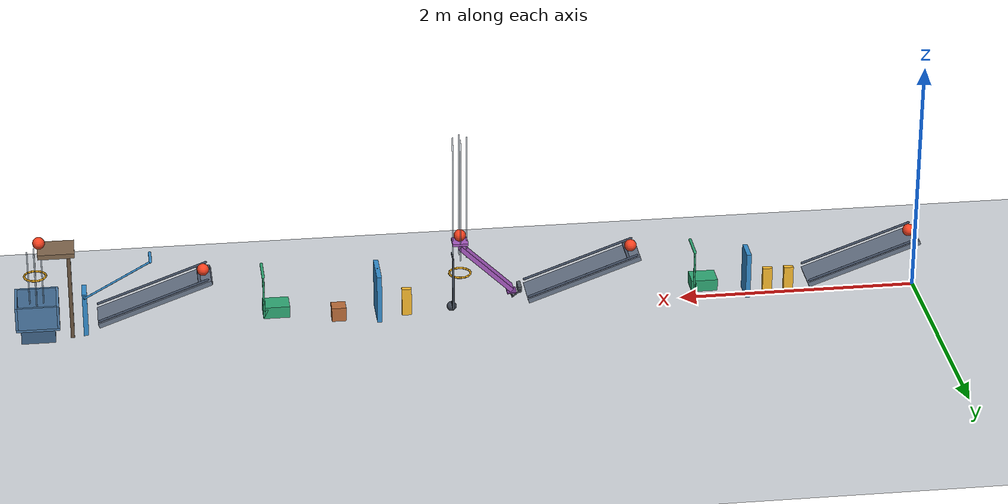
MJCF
<mujoco model="passive_chain_reaction">
  <compiler angle="radian" autolimits="true"/>
  <option timestep="0.002" gravity="0 0 -9.81" integrator="implicitfast" solver="Newton" iterations="100" tolerance="1e-9" cone="elliptic"/>
  <size njmax="3000" nconmax="1000"/>

  <!-- MuJoCo has no direct restitution coefficient. The contact damping ratio below approximates e = 0.05. -->
  <default>
    <geom friction="0.70 0 0" condim="3" solref="0.010 0.690107" solimp="0.95 0.99 0.001 0.5 2"/>
    <joint armature="0" solreflimit="0.006 1" solimplimit="0.99 0.999 0.001 0.5 2"/>
  </default>

  <visual>
    <global azimuth="110" elevation="-20"/>
    <headlight ambient="0.35 0.35 0.35" diffuse="0.65 0.65 0.65" specular="0.15 0.15 0.15"/>
    <rgba haze="0.85 0.90 0.95 1"/>
  </visual>

  <worldbody>
    <light name="main_light" pos="3.5 -3 7" dir="0 0 -1" directional="true"/>
    <camera name="overview" pos="4 -8 5" xyaxes="1 0 0 0 0.447214 0.894427"/>
    <geom name="floor" type="plane" size="12 6 0.1" rgba="0.82 0.84 0.86 1"/>

    <!-- Ramp surfaces are 1.00 m long; their low top edges are at z = 0.15 m. -->
    <body name="ramp1" pos="0.463006 0 0.302216" euler="0 0.3490658504 0">
      <geom name="ramp1_surface" type="box" size="0.50 0.15 0.02" rgba="0.42 0.47 0.55 1"/>
      <geom name="ramp1_left_rail" type="capsule" fromto="-0.48 -0.158 0.045 0.48 -0.158 0.045" size="0.01" rgba="0.25 0.30 0.38 1"/>
      <geom name="ramp1_right_rail" type="capsule" fromto="-0.48 0.158 0.045 0.48 0.158 0.045" size="0.01" rgba="0.25 0.30 0.38 1"/>
    </body>

    <body name="ball1" pos="0.064086 0 0.521904">
      <freejoint name="ball1_free"/>
      <geom name="ball1_sphere" type="sphere" size="0.05" mass="0.20" rgba="0.95 0.25 0.12 1"/>
    </body>

    <body name="domino1" pos="1.0796926 0 0.12">
      <freejoint name="domino1_free"/>
      <geom name="domino1_box" type="box" size="0.04 0.02 0.12" mass="0.25" rgba="0.96 0.72 0.18 1"/>
    </body>

    <body name="domino2" pos="1.2596926 0 0.12">
      <freejoint name="domino2_free"/>
      <geom name="domino2_box" type="box" size="0.04 0.02 0.12" mass="0.25" rgba="0.96 0.72 0.18 1"/>
    </body>

    <body name="flap1" pos="1.4396926 0 0.02">
      <joint name="flap1_hinge" type="hinge" axis="0 1 0" damping="0.04" limited="true" range="0 1.1344640138"/>
      <geom name="flap1_panel" type="box" pos="0 0 0.20" size="0.02 0.10 0.20" mass="0.30" rgba="0.20 0.55 0.80 1"/>
    </body>

    <!-- Cart-mounted pushrods reach the retained balls without changing the cart-box dimensions or total mass. -->
    <body name="cart1" pos="1.81 0 0.15">
      <joint name="cart1_slide" type="slide" axis="1 0 0" damping="0.20" limited="true" range="0 0.45"/>
      <geom name="cart1_box" type="box" size="0.11 0.09 0.05" mass="0.50" rgba="0.18 0.65 0.45 1"/>
      <geom name="cart1_pushrod" type="capsule" fromto="0.11 0.20 0.03 0.11 0.20 0.374245" size="0.008" mass="0" rgba="0.18 0.65 0.45 1"/>
      <geom name="cart1_striker" type="capsule" fromto="0.11 -0.035 0.374245 0.11 0.20 0.374245" size="0.012" mass="0" rgba="0.18 0.65 0.45 1"/>
      <geom name="cart1_pushrod_brace" type="capsule" fromto="0.075 0.075 0.025 0.11 0.20 0.03" size="0.008" mass="0" rgba="0.18 0.65 0.45 1"/>
    </body>

    <body name="ramp2" pos="2.837356 0 0.302216" euler="0 0.3490658504 0">
      <geom name="ramp2_surface" type="box" size="0.50 0.15 0.02" rgba="0.42 0.47 0.55 1"/>
      <geom name="ramp2_left_rail" type="capsule" fromto="-0.48 -0.158 0.045 0.48 -0.158 0.045" size="0.01" rgba="0.25 0.30 0.38 1"/>
      <geom name="ramp2_right_rail" type="capsule" fromto="-0.48 0.158 0.045 0.48 0.158 0.045" size="0.01" rgba="0.25 0.30 0.38 1"/>
      <geom name="ramp2_release_lip" type="capsule" fromto="-0.405 -0.13 0.036 -0.405 0.13 0.036" size="0.012" rgba="0.30 0.35 0.43 1"/>
    </body>

    <body name="ball2" pos="2.432 0 0.524245">
      <freejoint name="ball2_free"/>
      <geom name="ball2_sphere" type="sphere" size="0.05" mass="0.20" rgba="0.95 0.25 0.12 1"/>
    </body>

    <!-- The initial lever inclination supplies clearance for the two specified falls below ball3. -->
    <!-- Its spring is held by a rolling latch until the arriving ball displaces that latch. -->
    <body name="lever1" pos="3.649844 0 0.398398" euler="0 -0.7679448709 0">
      <joint name="lever1_hinge" type="hinge" axis="0 -1 0" damping="0.04" stiffness="2.0" springref="1.20" limited="true" range="0 0.7853981634"/>
      <geom name="lever1_beam" type="box" size="0.30 0.05 0.02" mass="0.50" rgba="0.65 0.35 0.75 1"/>
      <geom name="lever1_ball_tray" type="box" pos="0.327786 0 0.028774" euler="0 0.7679448709 0" size="0.065 0.065 0.01" mass="0" rgba="0.65 0.35 0.75 1"/>
      <geom name="lever1_latch_pad" type="box" pos="-0.317366 0 -0.017984" euler="0 0.7679448709 0" size="0.04 0.055 0.005" mass="0" rgba="0.45 0.22 0.55 1"/>
    </body>

    <!-- The latch link is routed outside the pad's y extent; its crosspieces pass below and above the pad. -->
    <body name="lever_latch" pos="3.434042 0 0.145">
      <joint name="lever_latch_slide" type="slide" axis="1 0 0" damping="0.20" limited="true" range="0 0.18"/>
      <geom name="lever_latch_trigger" type="box" pos="-0.065 0 0.05" size="0.015 0.055 0.025" mass="0.025" rgba="0.35 0.38 0.42 1"/>
      <geom name="lever_latch_link" type="capsule" fromto="0 0.075 0 -0.065 0.075 0.05" size="0.006" mass="0" rgba="0.35 0.38 0.42 1"/>
      <geom name="lever_latch_lower_crosspiece" type="capsule" fromto="0 0 0 0 0.075 0" size="0.006" mass="0" rgba="0.35 0.38 0.42 1"/>
      <geom name="lever_latch_upper_crosspiece" type="capsule" fromto="-0.065 0 0.05 -0.065 0.075 0.05" size="0.006" mass="0" rgba="0.35 0.38 0.42 1"/>
      <body name="lever_latch_roller" pos="0 0 0">
        <joint name="lever_latch_roller_joint" type="ball" damping="0"/>
        <geom name="lever_latch_roller_sphere" type="sphere" size="0.015" mass="0.005" rgba="0.60 0.63 0.68 1"/>
      </body>
    </body>

    <body name="ball3" pos="3.865646 0 0.706796">
      <freejoint name="ball3_free"/>
      <geom name="ball3_sphere" type="sphere" size="0.05" mass="0.20" contype="2" conaffinity="3" rgba="0.95 0.25 0.12 1"/>
    </body>

    <!-- These guides interact only with ball3, preserving a vertical launch and return path. -->
    <body name="launch_guide" pos="3.865646 0 0">
      <geom name="launch_guide_left" type="capsule" fromto="-0.057 0 0.50 -0.057 0 1.60" size="0.005" contype="2" conaffinity="2" rgba="0.55 0.65 0.75 0.35"/>
      <geom name="launch_guide_right" type="capsule" fromto="0.057 0 0.50 0.057 0 1.60" size="0.005" contype="2" conaffinity="2" rgba="0.55 0.65 0.75 0.35"/>
      <geom name="launch_guide_front" type="capsule" fromto="0 -0.057 0.50 0 -0.057 1.60" size="0.005" contype="2" conaffinity="2" rgba="0.55 0.65 0.75 0.35"/>
      <geom name="launch_guide_back" type="capsule" fromto="0 0.057 0.50 0 0.057 1.60" size="0.005" contype="2" conaffinity="2" rgba="0.55 0.65 0.75 0.35"/>
    </body>

    <!-- Sixteen capsule segments give a horizontal ring with a 0.16 m clear diameter. -->
    <body name="ring1" pos="3.865646 0 0.356796">
      <geom name="ring1_segment01" type="capsule" fromto="0.089724 0 0 0.082894 0.034336 0" size="0.008" rgba="0.90 0.65 0.10 1"/>
      <geom name="ring1_segment02" type="capsule" fromto="0.082894 0.034336 0 0.063444 0.063444 0" size="0.008" rgba="0.90 0.65 0.10 1"/>
      <geom name="ring1_segment03" type="capsule" fromto="0.063444 0.063444 0 0.034336 0.082894 0" size="0.008" rgba="0.90 0.65 0.10 1"/>
      <geom name="ring1_segment04" type="capsule" fromto="0.034336 0.082894 0 0 0.089724 0" size="0.008" rgba="0.90 0.65 0.10 1"/>
      <geom name="ring1_segment05" type="capsule" fromto="0 0.089724 0 -0.034336 0.082894 0" size="0.008" rgba="0.90 0.65 0.10 1"/>
      <geom name="ring1_segment06" type="capsule" fromto="-0.034336 0.082894 0 -0.063444 0.063444 0" size="0.008" rgba="0.90 0.65 0.10 1"/>
      <geom name="ring1_segment07" type="capsule" fromto="-0.063444 0.063444 0 -0.082894 0.034336 0" size="0.008" rgba="0.90 0.65 0.10 1"/>
      <geom name="ring1_segment08" type="capsule" fromto="-0.082894 0.034336 0 -0.089724 0 0" size="0.008" rgba="0.90 0.65 0.10 1"/>
      <geom name="ring1_segment09" type="capsule" fromto="-0.089724 0 0 -0.082894 -0.034336 0" size="0.008" rgba="0.90 0.65 0.10 1"/>
      <geom name="ring1_segment10" type="capsule" fromto="-0.082894 -0.034336 0 -0.063444 -0.063444 0" size="0.008" rgba="0.90 0.65 0.10 1"/>
      <geom name="ring1_segment11" type="capsule" fromto="-0.063444 -0.063444 0 -0.034336 -0.082894 0" size="0.008" rgba="0.90 0.65 0.10 1"/>
      <geom name="ring1_segment12" type="capsule" fromto="-0.034336 -0.082894 0 0 -0.089724 0" size="0.008" rgba="0.90 0.65 0.10 1"/>
      <geom name="ring1_segment13" type="capsule" fromto="0 -0.089724 0 0.034336 -0.082894 0" size="0.008" rgba="0.90 0.65 0.10 1"/>
      <geom name="ring1_segment14" type="capsule" fromto="0.034336 -0.082894 0 0.063444 -0.063444 0" size="0.008" rgba="0.90 0.65 0.10 1"/>
      <geom name="ring1_segment15" type="capsule" fromto="0.063444 -0.063444 0 0.082894 -0.034336 0" size="0.008" rgba="0.90 0.65 0.10 1"/>
      <geom name="ring1_segment16" type="capsule" fromto="0.082894 -0.034336 0 0.089724 0 0" size="0.008" rgba="0.90 0.65 0.10 1"/>
    </body>

    <!-- The offset rigid rod clears ring1 while the bob hangs directly below its hinge. -->
    <body name="pendulum1" pos="3.935646 0 0.550227">
      <joint name="pendulum1_hinge" type="hinge" axis="0 -1 0" damping="0.04" limited="true" range="0 0.6981317008"/>
      <geom name="pendulum1_rod" type="capsule" fromto="0 0.13 -0.01 0 0.13 -0.46" size="0.008" mass="0.05" rgba="0.32 0.36 0.42 1"/>
      <geom name="pendulum1_upper_yoke" type="capsule" fromto="0 0 0 0 0.13 0" size="0.006" mass="0" rgba="0.32 0.36 0.42 1"/>
      <geom name="pendulum1_lower_yoke" type="capsule" fromto="0 0.13 -0.46 0 0 -0.46" size="0.006" mass="0" rgba="0.32 0.36 0.42 1"/>
      <geom name="pendulum1_bob" type="sphere" pos="0 0 -0.50" size="0.04" mass="0.30" rgba="0.25 0.28 0.33 1"/>
    </body>

    <body name="domino3" pos="4.314244 0 0.12">
      <freejoint name="domino3_free"/>
      <geom name="domino3_box" type="box" size="0.04 0.02 0.12" mass="0.25" rgba="0.96 0.72 0.18 1"/>
    </body>

    <body name="door1" pos="4.554244 0 0.02">
      <joint name="door1_hinge" type="hinge" axis="0 1 0" damping="0.04" limited="true" range="0 1.2217304764"/>
      <geom name="door1_panel" type="box" pos="0 0 0.21" size="0.02 0.16 0.21" mass="0.45" rgba="0.20 0.55 0.80 1"/>
      <site name="door1_spring_tip" pos="0 0 0.42" size="0.005" rgba="0.25 0.25 0.25 1"/>
    </body>

    <!-- An over-centre tension spring has zero opening moment in the initial upright configuration. -->
    <body name="door_spring_mount" pos="4.554244 0 -0.30">
      <site name="door_spring_anchor" pos="0 0 0" size="0.005" rgba="0.25 0.25 0.25 1"/>
    </body>

    <body name="block1" pos="4.884244 0 0.06">
      <freejoint name="block1_free"/>
      <geom name="block1_cube" type="box" size="0.06 0.06 0.06" mass="0.35" rgba="0.72 0.42 0.22 1"/>
    </body>

    <body name="cart2" pos="5.404244 0 0.13">
      <joint name="cart2_slide" type="slide" axis="1 0 0" damping="0.20" limited="true" range="0 0.42"/>
      <geom name="cart2_box" type="box" size="0.11 0.09 0.05" mass="0.50" rgba="0.18 0.65 0.45 1"/>
      <geom name="cart2_pushrod" type="capsule" fromto="0.11 0.20 0.03 0.11 0.20 0.394245" size="0.008" mass="0" rgba="0.18 0.65 0.45 1"/>
      <geom name="cart2_striker" type="capsule" fromto="0.11 -0.035 0.394245 0.11 0.20 0.394245" size="0.012" mass="0" rgba="0.18 0.65 0.45 1"/>
      <geom name="cart2_pushrod_brace" type="capsule" fromto="0.075 0.075 0.025 0.11 0.20 0.03" size="0.008" mass="0" rgba="0.18 0.65 0.45 1"/>
    </body>

    <body name="ramp3" pos="6.401600 0 0.302216" euler="0 0.3490658504 0">
      <geom name="ramp3_surface" type="box" size="0.50 0.15 0.02" rgba="0.42 0.47 0.55 1"/>
      <geom name="ramp3_left_rail" type="capsule" fromto="-0.48 -0.158 0.045 0.48 -0.158 0.045" size="0.01" rgba="0.25 0.30 0.38 1"/>
      <geom name="ramp3_right_rail" type="capsule" fromto="-0.48 0.158 0.045 0.48 0.158 0.045" size="0.01" rgba="0.25 0.30 0.38 1"/>
      <geom name="ramp3_release_lip" type="capsule" fromto="-0.405 -0.13 0.036 -0.405 0.13 0.036" size="0.012" rgba="0.30 0.35 0.43 1"/>
    </body>

    <body name="ball4" pos="5.996244 0 0.524245">
      <freejoint name="ball4_free"/>
      <geom name="ball4_sphere" type="sphere" size="0.05" mass="0.20" rgba="0.95 0.25 0.12 1"/>
    </body>

    <body name="flap2" pos="6.978287 0 0.02">
      <joint name="flap2_hinge" type="hinge" axis="0 1 0" damping="0.04" limited="true" range="0 1.0471975512"/>
      <geom name="flap2_panel" type="box" pos="0 0 0.19" size="0.02 0.09 0.19" mass="0.28" rgba="0.20 0.55 0.80 1"/>
      <geom name="flap2_arm_crosspiece" type="capsule" fromto="0 0 0.36 0 0.12 0.36" size="0.008" mass="0" rgba="0.20 0.55 0.80 1"/>
      <geom name="flap2_shelf_arm" type="capsule" fromto="0 0.12 0.36 -0.551480 0.12 0.664808" size="0.008" mass="0" rgba="0.20 0.55 0.80 1"/>
      <geom name="flap2_ball_striker" type="capsule" fromto="-0.551480 -0.04 0.664808 -0.551480 0.12 0.664808" size="0.012" mass="0" rgba="0.20 0.55 0.80 1"/>
    </body>

    <body name="shelf1" pos="7.19 0 0.78">
      <geom name="shelf1_surface" type="box" size="0.15 0.125 0.02" rgba="0.50 0.40 0.30 1"/>
      <geom name="shelf1_leg_left" type="box" pos="-0.10 -0.10 -0.38" size="0.015 0.015 0.38" rgba="0.40 0.32 0.24 1"/>
      <geom name="shelf1_leg_right" type="box" pos="-0.10 0.10 -0.38" size="0.015 0.015 0.38" rgba="0.40 0.32 0.24 1"/>
    </body>

    <body name="ball5" pos="7.325 0 0.85">
      <freejoint name="ball5_free"/>
      <geom name="ball5_sphere" type="sphere" size="0.05" mass="0.20" contype="4" conaffinity="5" rgba="0.95 0.25 0.12 1"/>
    </body>

    <!-- A short, ball-only drop guide absorbs horizontal shelf-exit motion. -->
    <body name="final_drop_guide" pos="7.37 0 0">
      <geom name="final_drop_guide_left" type="capsule" fromto="-0.057 0 0.30 -0.057 0 0.77" size="0.005" contype="4" conaffinity="4" rgba="0.55 0.65 0.75 0.35"/>
      <geom name="final_drop_guide_right" type="capsule" fromto="0.057 0 0.30 0.057 0 0.77" size="0.005" contype="4" conaffinity="4" rgba="0.55 0.65 0.75 0.35"/>
      <geom name="final_drop_guide_front" type="capsule" fromto="0 -0.057 0.30 0 -0.057 0.77" size="0.005" contype="4" conaffinity="4" rgba="0.55 0.65 0.75 0.35"/>
      <geom name="final_drop_guide_back" type="capsule" fromto="0 0.057 0.30 0 0.057 0.77" size="0.005" contype="4" conaffinity="4" rgba="0.55 0.65 0.75 0.35"/>
    </body>

    <body name="ring2" pos="7.37 0 0.55">
      <geom name="ring2_segment01" type="capsule" fromto="0.089724 0 0 0.082894 0.034336 0" size="0.008" rgba="0.90 0.65 0.10 1"/>
      <geom name="ring2_segment02" type="capsule" fromto="0.082894 0.034336 0 0.063444 0.063444 0" size="0.008" rgba="0.90 0.65 0.10 1"/>
      <geom name="ring2_segment03" type="capsule" fromto="0.063444 0.063444 0 0.034336 0.082894 0" size="0.008" rgba="0.90 0.65 0.10 1"/>
      <geom name="ring2_segment04" type="capsule" fromto="0.034336 0.082894 0 0 0.089724 0" size="0.008" rgba="0.90 0.65 0.10 1"/>
      <geom name="ring2_segment05" type="capsule" fromto="0 0.089724 0 -0.034336 0.082894 0" size="0.008" rgba="0.90 0.65 0.10 1"/>
      <geom name="ring2_segment06" type="capsule" fromto="-0.034336 0.082894 0 -0.063444 0.063444 0" size="0.008" rgba="0.90 0.65 0.10 1"/>
      <geom name="ring2_segment07" type="capsule" fromto="-0.063444 0.063444 0 -0.082894 0.034336 0" size="0.008" rgba="0.90 0.65 0.10 1"/>
      <geom name="ring2_segment08" type="capsule" fromto="-0.082894 0.034336 0 -0.089724 0 0" size="0.008" rgba="0.90 0.65 0.10 1"/>
      <geom name="ring2_segment09" type="capsule" fromto="-0.089724 0 0 -0.082894 -0.034336 0" size="0.008" rgba="0.90 0.65 0.10 1"/>
      <geom name="ring2_segment10" type="capsule" fromto="-0.082894 -0.034336 0 -0.063444 -0.063444 0" size="0.008" rgba="0.90 0.65 0.10 1"/>
      <geom name="ring2_segment11" type="capsule" fromto="-0.063444 -0.063444 0 -0.034336 -0.082894 0" size="0.008" rgba="0.90 0.65 0.10 1"/>
      <geom name="ring2_segment12" type="capsule" fromto="-0.034336 -0.082894 0 0 -0.089724 0" size="0.008" rgba="0.90 0.65 0.10 1"/>
      <geom name="ring2_segment13" type="capsule" fromto="0 -0.089724 0 0.034336 -0.082894 0" size="0.008" rgba="0.90 0.65 0.10 1"/>
      <geom name="ring2_segment14" type="capsule" fromto="0.034336 -0.082894 0 0.063444 -0.063444 0" size="0.008" rgba="0.90 0.65 0.10 1"/>
      <geom name="ring2_segment15" type="capsule" fromto="0.063444 -0.063444 0 0.082894 -0.034336 0" size="0.008" rgba="0.90 0.65 0.10 1"/>
      <geom name="ring2_segment16" type="capsule" fromto="0.082894 -0.034336 0 0.089724 0 0" size="0.008" rgba="0.90 0.65 0.10 1"/>
    </body>

    <!-- The bin floor is at z = 0.15, placing the resting ball centre 0.35 m below ring2. -->
    <body name="bin1" pos="7.37 0 0">
      <geom name="bin1_base" type="box" pos="0 0 0.14" size="0.18 0.18 0.01" rgba="0.30 0.48 0.65 1"/>
      <geom name="bin1_wall_left" type="box" pos="-0.17 0 0.25" size="0.01 0.18 0.10" rgba="0.30 0.48 0.65 1"/>
      <geom name="bin1_wall_right" type="box" pos="0.17 0 0.25" size="0.01 0.18 0.10" rgba="0.30 0.48 0.65 1"/>
      <geom name="bin1_wall_front" type="box" pos="0 -0.17 0.25" size="0.16 0.01 0.10" rgba="0.30 0.48 0.65 1"/>
      <geom name="bin1_wall_back" type="box" pos="0 0.17 0.25" size="0.16 0.01 0.10" rgba="0.30 0.48 0.65 1"/>
      <geom name="bin1_support" type="box" pos="0 0 0.065" size="0.14 0.14 0.065" rgba="0.24 0.38 0.52 1"/>
    </body>
  </worldbody>

  <tendon>
    <spatial name="door1_assist_spring" stiffness="30" damping="0" springlength="0.44" width="0.003" rgba="0.30 0.30 0.30 0.5">
      <site site="door_spring_anchor"/>
      <site site="door1_spring_tip"/>
    </spatial>
  </tendon>

  <!-- Omitted keyframe state arrays use qpos0 and zero velocities; no actuators or external controls are used. -->
  <keyframe>
    <key name="start" time="0"/>
  </keyframe>
</mujoco>
